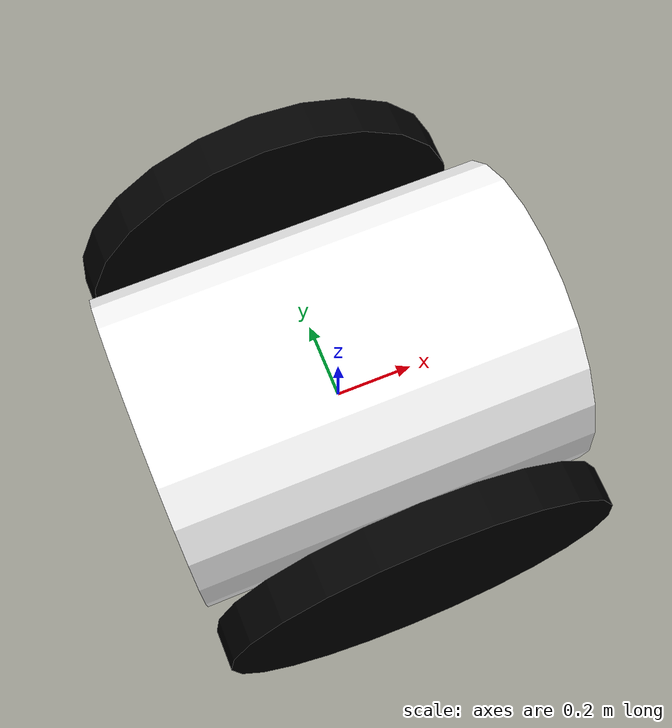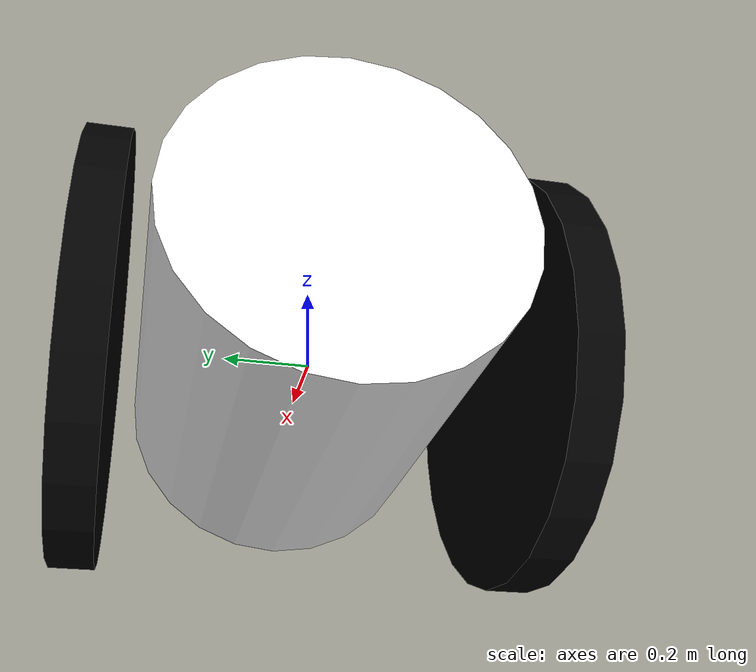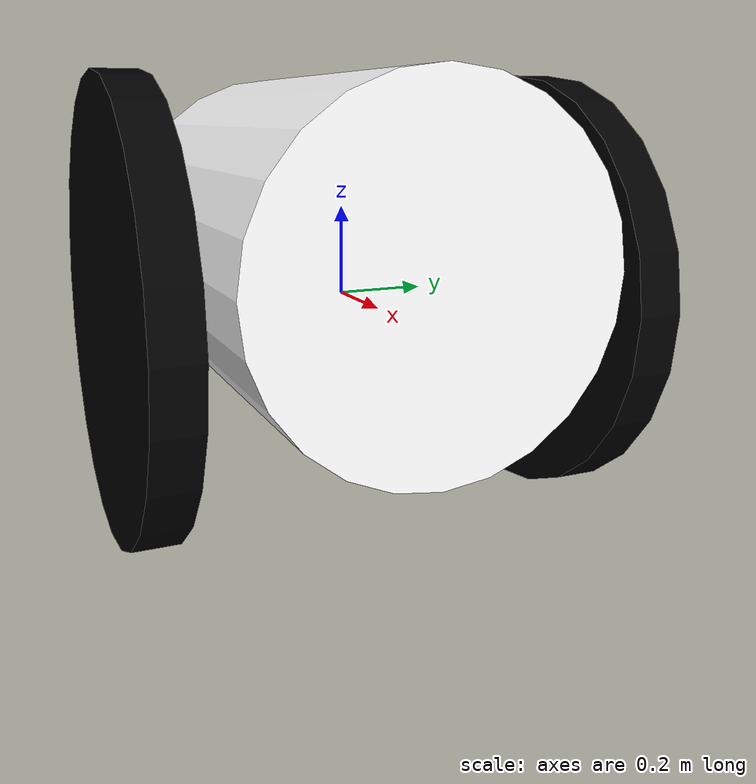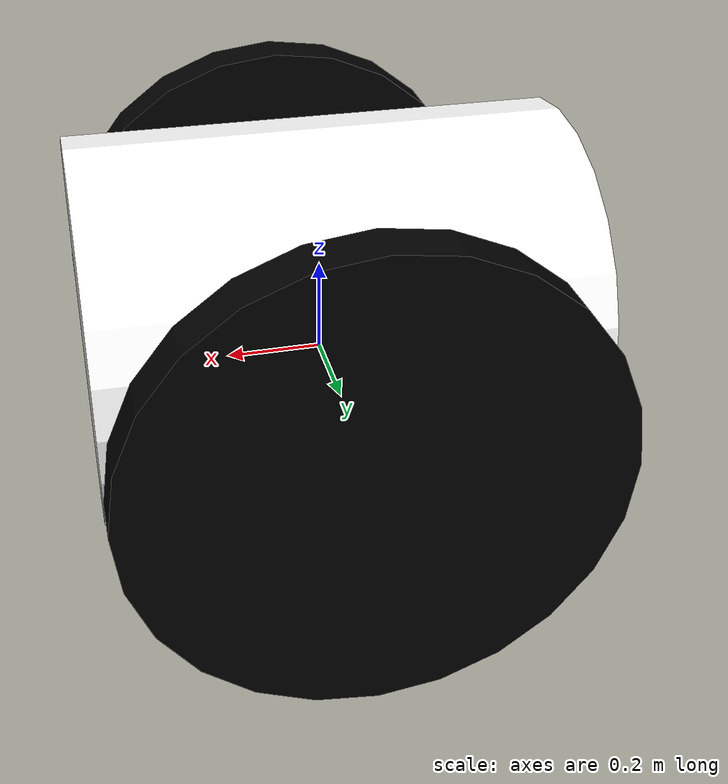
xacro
<?xml version="1.0"?>
<robot name="my_f" xmlns:xacro="http://www.ros.org/wiki/xacro">
  <xacro:property name="width" value="0.4" />       <!-- 로봇 몸통 반지름 -->
  <xacro:property name="length" value="1.0" />      <!-- 로봇 몸통 길이 -->
  <xacro:property name="wheel_length" value="0.1" />      <!-- 로봇 몸통 높이 -->
  <xacro:property name="body_high" value="0.1" />  <!-- 바퀴 지름 -->
  <xacro:property name="wheelrad" value="${body_high+width}" />  <!-- 바퀴 지름 -->

  <material name="blue">
    <color rgba="0 0 0.8 1"/>
  </material>

  <material name="white">
    <color rgba="1 1 1 1"/>
  </material>

  <material name="black">
    <color rgba="0 0 0 1"/>
  </material>
  <xacro:macro name="default_inertial" params="mass">
    <inertial>
      <mass value="${mass}" /> <!-- 입력받은 무게 설정 -->
      <!-- 관성 모멘트 회전 저항값 (시뮬레이션 가속도 계산용 기본값) -->
      <inertia ixx="1e-3" ixy="0.0" ixz="0.0" iyy="1e-3" iyz="0.0" izz="1e-3" />
    </inertial>
  </xacro:macro>
  <xacro:macro name="wheel" params="prefix reflect">
    <joint name="${prefix}_wheel_joint" type="continuous">
      <axis xyz="0 0 ${reflect*1}"/> <!-- 회전 중심축을 Y축(0 1 0)으로 설정 -->
      <parent link="base_link"/>  <!-- 부모: 아래에서 만들 하부 베이스 -->
      <child link="${prefix}_wheel"/> <!-- 자식: 방금 만든 바퀴 링크 -->
      <!-- 부모 기준 바퀴 위치: reflect가 1이면 앞쪽, -1이면 뒤쪽에 배치됨 -->
      <origin xyz="0 ${reflect*(body_high+width)} 0" rpy="${reflect*1.570796} 0 0"/>
    </joint>
  </xacro:macro>

  <link name="base_link">
    <visual>
      <geometry>
        <cylinder length="${length}" radius="${width}"/>
      </geometry>
      <!-- [오타 수정] 순수 URDF는 글자 pi/2를 연산하지 못하므로 숫자로 변경 (pi/2 -> 1.570796) -->
      <origin xyz="0 0 ${body_high}" rpy="0 1.570796 0"/>
      <material name="white"/>
    </visual>
    <xacro:default_inertial mass="10"/>
  </link>

  <link name="right_wheel">
    <visual>
      <geometry>
        <cylinder length="${wheel_length}" radius="${wheelrad}"/>
      </geometry>
      <!-- [오타 수정] 글자 pi/2를 숫자로 변경 (pi/2 -> 1.570796) -->
      <origin xyz="0 0 0" rpy="0 0 0"/>
      <material name="black"/>
    </visual>
    <xacro:default_inertial mass="1"/>
  </link>

  <link name="left_wheel">
    <visual>
      <geometry>
        <cylinder length="${wheel_length}" radius="${wheelrad}"/>
      </geometry>
      <!-- [오타 수정] 글자 -pi/2를 숫자로 변경 (-pi/2 -> -1.570796) -->
      <origin xyz="0 0 0" rpy="0 0 0"/>
      <material name="black"/>
    </visual>
    <xacro:default_inertial mass="1"/>
  </link>

  <xacro:wheel prefix="right" reflect="1"/>
    <xacro:wheel prefix="left" reflect="-1"/>
</robot>
